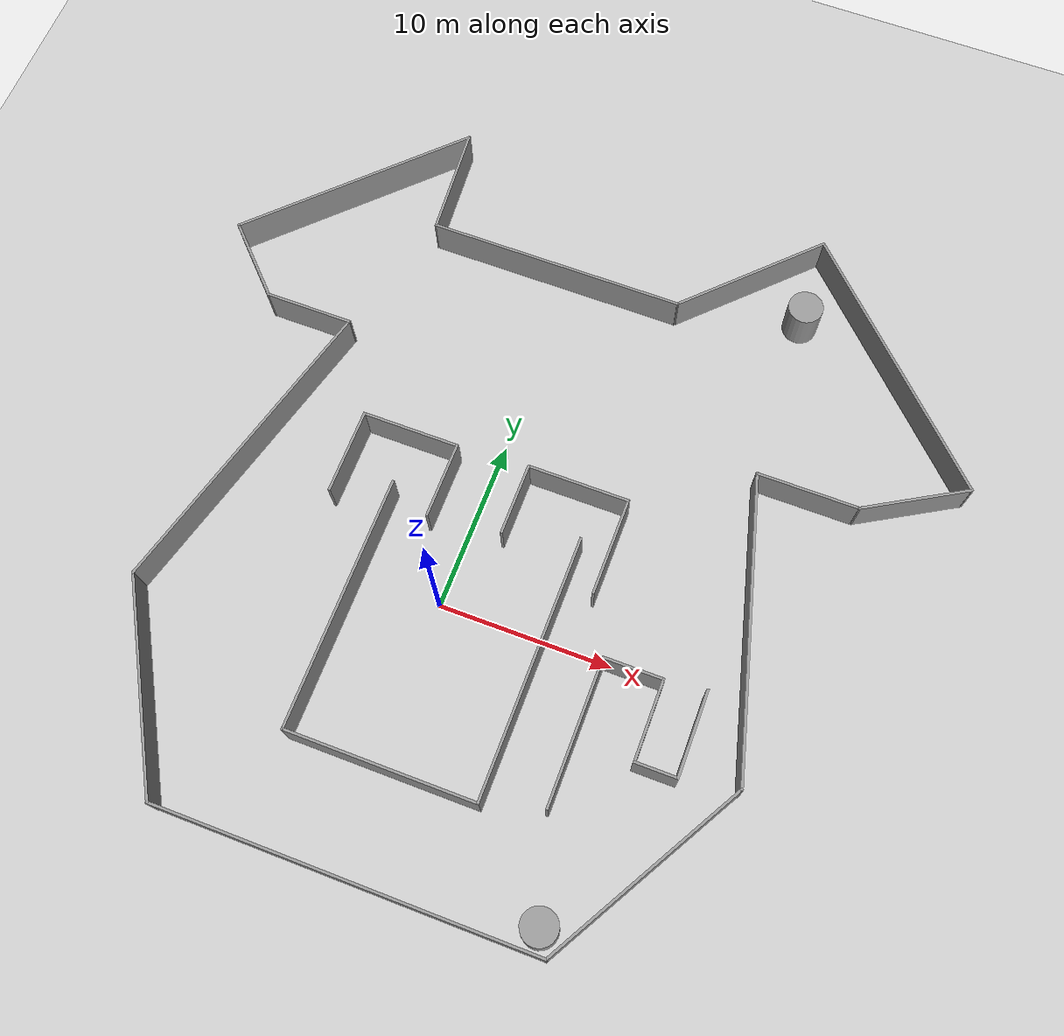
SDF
<sdf version="1.6">
 <world name="default">
  <light name="sun" type="directional">
   <pose>0 0 10 0 -0 0</pose>
   <diffuse>0.8 0.8 0.8 1</diffuse>
   <specular>0.2 0.2 0.2 1</specular>
   <attenuation>
    <range>1000</range>
    <constant>0.9</constant>
    <linear>0.01</linear>
    <quadratic>0.001</quadratic>
   </attenuation>
   <direction>-0.5 0.1 -0.9</direction>
  </light>
  <model name="ground_plane">
   <static>1</static>
   <link name="link">
    <collision name="collision">
     <geometry><plane><normal>0 0 1</normal><size>100 100</size></plane></geometry>
     <surface>
      <contact><collide_bitmask>65535</collide_bitmask></contact>
      <friction><ode><mu>100</mu><mu2>50</mu2></ode></friction>
     </surface>
    </collision>
    <visual name="visual">
     <cast_shadows>0</cast_shadows>
     <geometry><plane><normal>0 0 1</normal><size>100 100</size></plane></geometry>
     <material>
      <script><uri>file://media/materials/scripts/gazebo.material</uri><name>Gazebo/Grey</name></script>
     </material>
    </visual>
   </link>
  </model>
  <gravity>0 0 -9.8</gravity>
  <magnetic_field>6e-06 2.3e-05 -4.2e-05</magnetic_field>
  <atmosphere type="adiabatic"/>
  <physics name="default_physics" default="0" type="ode">
   <max_step_size>0.001</max_step_size>
   <real_time_factor>1</real_time_factor>
   <real_time_update_rate>1000</real_time_update_rate>
  </physics>
  <scene><ambient>0.4 0.4 0.4 1</ambient><background>0.7 0.7 0.7 1</background><shadows>1</shadows></scene>
  <audio><device>default</device></audio>
  <spherical_coordinates>
   <surface_model>EARTH_WGS84</surface_model>
   <latitude_deg>0</latitude_deg>
   <longitude_deg>0</longitude_deg>
   <elevation>0</elevation>
   <heading_deg>0</heading_deg>
  </spherical_coordinates>
  <model name="bigscene">
   <pose>2.86217 6.24914 0 0 -0 0</pose>
   <link name="Wall_0">
    <collision name="Wall_0_Collision">
     <geometry><box><size>15.25 0.15 2.5</size></box></geometry>
     <pose>0 0 1.25 0 -0 0</pose>
    </collision>
    <visual name="Wall_0_Visual">
     <pose>0 0 1.25 0 -0 0</pose>
     <geometry><box><size>15.25 0.15 2.5</size></box></geometry>
     <material>
      <script><uri>file://media/materials/scripts/gazebo.material</uri><name>Gazebo/Grey</name></script>
      <ambient>1 1 1 1</ambient>
     </material>
     <meta><layer>0</layer></meta>
    </visual>
    <pose>-3.95427 14.7868 0 0 -0 0</pose>
   </link>
   <link name="Wall_1">
    <collision name="Wall_1_Collision">
     <geometry><box><size>9.75 0.15 2.5</size></box></geometry>
     <pose>0 0 1.25 0 -0 0</pose>
    </collision>
    <visual name="Wall_1_Visual">
     <pose>0 0 1.25 0 -0 0</pose>
     <geometry><box><size>9.75 0.15 2.5</size></box></geometry>
     <material>
      <script><uri>file://media/materials/scripts/gazebo.material</uri><name>Gazebo/Grey</name></script>
      <ambient>1 1 1 1</ambient>
     </material>
     <meta><layer>0</layer></meta>
    </visual>
    <pose>6.98984 18.181 0 0 -0 0.785398</pose>
   </link>
   <link name="Wall_10">
    <collision name="Wall_10_Collision">
     <geometry><box><size>5.25 0.15 2.5</size></box></geometry>
     <pose>0 0 1.25 0 -0 0</pose>
    </collision>
    <visual name="Wall_10_Visual">
     <pose>0 0 1.25 0 -0 0</pose>
     <geometry><box><size>5.25 0.15 2.5</size></box></geometry>
     <material>
      <script><uri>file://media/materials/scripts/gazebo.material</uri><name>Gazebo/Grey</name></script>
      <ambient>1 1 1 1</ambient>
     </material>
     <meta><layer>0</layer></meta>
    </visual>
    <pose>-16.3192 7.08294 0 0 -0 3.14159</pose>
   </link>
   <link name="Wall_11">
    <collision name="Wall_11_Collision">
     <geometry><box><size>5.25 0.15 2.5</size></box></geometry>
     <pose>0 0 1.25 0 -0 0</pose>
    </collision>
    <visual name="Wall_11_Visual">
     <pose>0 0 1.25 0 -0 0</pose>
     <geometry><box><size>5.25 0.15 2.5</size></box></geometry>
     <material>
      <script><uri>file://media/materials/scripts/gazebo.material</uri><name>Gazebo/Grey</name></script>
      <ambient>1 1 1 1</ambient>
     </material>
     <meta><layer>0</layer></meta>
    </visual>
    <pose>-20.6724 8.88607 0 0 -0 2.35619</pose>
   </link>
   <link name="Wall_12">
    <collision name="Wall_12_Collision">
     <geometry><box><size>15 0.15 2.5</size></box></geometry>
     <pose>0 0 1.25 0 -0 0</pose>
    </collision>
    <visual name="Wall_12_Visual">
     <pose>0 0 1.25 0 -0 0</pose>
     <geometry><box><size>15 0.15 2.5</size></box></geometry>
     <material>
      <script><uri>file://media/materials/scripts/gazebo.material</uri><name>Gazebo/Grey</name></script>
      <ambient>1 1 1 1</ambient>
     </material>
     <meta><layer>0</layer></meta>
    </visual>
    <pose>-17.2252 15.9395 0 0 -0 0.785398</pose>
   </link>
   <link name="Wall_13">
    <collision name="Wall_13_Collision">
     <geometry><box><size>6.57015 0.15 2.5</size></box></geometry>
     <pose>0 0 1.25 0 -0 0</pose>
    </collision>
    <visual name="Wall_13_Visual">
     <pose>0 0 1.25 0 -0 0</pose>
     <geometry><box><size>6.57015 0.15 2.5</size></box></geometry>
     <material>
      <script><uri>file://media/materials/scripts/gazebo.material</uri><name>Gazebo/Grey</name></script>
      <ambient>1 1 1 1</ambient>
     </material>
     <meta><layer>0</layer></meta>
    </visual>
    <pose>-11.7396 17.9883 0 0 -0 -1.49742</pose>
   </link>
   <link name="Wall_15">
    <collision name="Wall_15_Collision">
     <geometry><box><size>5 0.15 2.5</size></box></geometry>
     <pose>0 0 1.25 0 -0 0</pose>
    </collision>
    <visual name="Wall_15_Visual">
     <pose>0 0 1.25 0 -0 0</pose>
     <geometry><box><size>5 0.15 2.5</size></box></geometry>
     <material>
      <script><uri>file://media/materials/scripts/gazebo.material</uri><name>Gazebo/Grey</name></script>
      <ambient>1 1 1 1</ambient>
     </material>
     <meta><layer>0</layer></meta>
    </visual>
    <pose>-10.638 -0.361295 0 0 -0 1.5708</pose>
   </link>
   <link name="Wall_16">
    <collision name="Wall_16_Collision">
     <geometry><box><size>5.75 0.15 2.5</size></box></geometry>
     <pose>0 0 1.25 0 -0 0</pose>
    </collision>
    <visual name="Wall_16_Visual">
     <pose>0 0 1.25 0 -0 0</pose>
     <geometry><box><size>5.75 0.15 2.5</size></box></geometry>
     <material>
      <script><uri>file://media/materials/scripts/gazebo.material</uri><name>Gazebo/Grey</name></script>
      <ambient>1 1 1 1</ambient>
     </material>
     <meta><layer>0</layer></meta>
    </visual>
    <pose>-7.83799 2.06371 0 0 -0 0</pose>
   </link>
   <link name="Wall_17">
    <collision name="Wall_17_Collision">
     <geometry><box><size>4.5 0.15 2.5</size></box></geometry>
     <pose>0 0 1.25 0 -0 0</pose>
    </collision>
    <visual name="Wall_17_Visual">
     <pose>0 0 1.25 0 -0 0</pose>
     <geometry><box><size>4.5 0.15 2.5</size></box></geometry>
     <material>
      <script><uri>file://media/materials/scripts/gazebo.material</uri><name>Gazebo/Grey</name></script>
      <ambient>1 1 1 1</ambient>
     </material>
     <meta><layer>0</layer></meta>
    </visual>
    <pose>-5.03799 -0.111295 0 0 -0 -1.5708</pose>
   </link>
   <link name="Wall_19">
    <collision name="Wall_19_Collision">
     <geometry><box><size>4.25 0.15 2.5</size></box></geometry>
     <pose>0 0 1.25 0 -0 0</pose>
    </collision>
    <visual name="Wall_19_Visual">
     <pose>0 0 1.25 0 -0 0</pose>
     <geometry><box><size>4.25 0.15 2.5</size></box></geometry>
     <material>
      <script><uri>file://media/materials/scripts/gazebo.material</uri><name>Gazebo/Grey</name></script>
      <ambient>1 1 1 1</ambient>
     </material>
     <meta><layer>0</layer></meta>
    </visual>
    <pose>-0.86138 0.253742 0 0 -0 1.5708</pose>
   </link>
   <link name="Wall_2">
    <collision name="Wall_2_Collision">
     <geometry><box><size>17.25 0.15 2.5</size></box></geometry>
     <pose>0 0 1.25 0 -0 0</pose>
    </collision>
    <visual name="Wall_2_Visual">
     <pose>0 0 1.25 0 -0 0</pose>
     <geometry><box><size>17.25 0.15 2.5</size></box></geometry>
     <material>
      <script><uri>file://media/materials/scripts/gazebo.material</uri><name>Gazebo/Grey</name></script>
      <ambient>1 1 1 1</ambient>
     </material>
     <meta><layer>0</layer></meta>
    </visual>
    <pose>16.4297 15.5293 0 0 -0 -0.785398</pose>
   </link>
   <link name="Wall_20">
    <collision name="Wall_20_Collision">
     <geometry><box><size>6 0.15 2.5</size></box></geometry>
     <pose>0 0 1.25 0 -0 0</pose>
    </collision>
    <visual name="Wall_20_Visual">
     <pose>0 0 1.25 0 -0 0</pose>
     <geometry><box><size>6 0.15 2.5</size></box></geometry>
     <material>
      <script><uri>file://media/materials/scripts/gazebo.material</uri><name>Gazebo/Grey</name></script>
      <ambient>1 1 1 1</ambient>
     </material>
     <meta><layer>0</layer></meta>
    </visual>
    <pose>2.06362 2.30374 0 0 -0 0</pose>
   </link>
   <link name="Wall_21">
    <collision name="Wall_21_Collision">
     <geometry><box><size>5.75 0.15 2.5</size></box></geometry>
     <pose>0 0 1.25 0 -0 0</pose>
    </collision>
    <visual name="Wall_21_Visual">
     <pose>0 0 1.25 0 -0 0</pose>
     <geometry><box><size>5.75 0.15 2.5</size></box></geometry>
     <material>
      <script><uri>file://media/materials/scripts/gazebo.material</uri><name>Gazebo/Grey</name></script>
      <ambient>1 1 1 1</ambient>
     </material>
     <meta><layer>0</layer></meta>
    </visual>
    <pose>4.98862 -0.496258 0 0 -0 -1.5708</pose>
   </link>
   <link name="Wall_23">
    <collision name="Wall_23_Collision">
     <geometry><box><size>14.75 0.15 2.5</size></box></geometry>
     <pose>0 0 1.25 0 -0 0</pose>
    </collision>
    <visual name="Wall_23_Visual">
     <pose>0 0 1.25 0 -0 0</pose>
     <geometry><box><size>14.75 0.15 2.5</size></box></geometry>
     <material>
      <script><uri>file://media/materials/scripts/gazebo.material</uri><name>Gazebo/Grey</name></script>
      <ambient>1 1 1 1</ambient>
     </material>
     <meta><layer>0</layer></meta>
    </visual>
    <pose>-7.54412 -8.47749 0 0 -0 -1.5708</pose>
   </link>
   <link name="Wall_24">
    <collision name="Wall_24_Collision">
     <geometry><box><size>11 0.15 2.5</size></box></geometry>
     <pose>0 0 1.25 0 -0 0</pose>
    </collision>
    <visual name="Wall_24_Visual">
     <pose>0 0 1.25 0 -0 0</pose>
     <geometry><box><size>11 0.15 2.5</size></box></geometry>
     <material>
      <script><uri>file://media/materials/scripts/gazebo.material</uri><name>Gazebo/Grey</name></script>
      <ambient>1 1 1 1</ambient>
     </material>
     <meta><layer>0</layer></meta>
    </visual>
    <pose>-2.11912 -15.7775 0 0 -0 0</pose>
   </link>
   <link name="Wall_25">
    <collision name="Wall_25_Collision">
     <geometry><box><size>15.25 0.15 2.5</size></box></geometry>
     <pose>0 0 1.25 0 -0 0</pose>
    </collision>
    <visual name="Wall_25_Visual">
     <pose>0 0 1.25 0 -0 0</pose>
     <geometry><box><size>15.25 0.15 2.5</size></box></geometry>
     <material>
      <script><uri>file://media/materials/scripts/gazebo.material</uri><name>Gazebo/Grey</name></script>
      <ambient>1 1 1 1</ambient>
     </material>
     <meta><layer>0</layer></meta>
    </visual>
    <pose>3.30587 -8.22749 0 0 -0 1.5708</pose>
   </link>
   <link name="Wall_27">
    <collision name="Wall_27_Collision">
     <geometry><box><size>8.5 0.15 2.5</size></box></geometry>
     <pose>0 0 1.25 0 -0 0</pose>
    </collision>
    <visual name="Wall_27_Visual">
     <pose>0 0 1.25 0 -0 0</pose>
     <geometry><box><size>8.5 0.15 2.5</size></box></geometry>
     <material>
      <script><uri>file://media/materials/scripts/gazebo.material</uri><name>Gazebo/Grey</name></script>
      <ambient>1 1 1 1</ambient>
     </material>
     <meta><layer>0</layer></meta>
    </visual>
    <pose>6.68765 -10.6155 0 0 -0 1.5708</pose>
   </link>
   <link name="Wall_28">
    <collision name="Wall_28_Collision">
     <geometry><box><size>3.5 0.15 2.5</size></box></geometry>
     <pose>0 0 1.25 0 -0 0</pose>
    </collision>
    <visual name="Wall_28_Visual">
     <pose>0 0 1.25 0 -0 0</pose>
     <geometry><box><size>3.5 0.15 2.5</size></box></geometry>
     <material>
      <script><uri>file://media/materials/scripts/gazebo.material</uri><name>Gazebo/Grey</name></script>
      <ambient>1 1 1 1</ambient>
     </material>
     <meta><layer>0</layer></meta>
    </visual>
    <pose>8.36265 -6.44048 0 0 -0 0</pose>
   </link>
   <link name="Wall_29">
    <collision name="Wall_29_Collision">
     <geometry><box><size>4.75 0.15 2.5</size></box></geometry>
     <pose>0 0 1.25 0 -0 0</pose>
    </collision>
    <visual name="Wall_29_Visual">
     <pose>0 0 1.25 0 -0 0</pose>
     <geometry><box><size>4.75 0.15 2.5</size></box></geometry>
     <material>
      <script><uri>file://media/materials/scripts/gazebo.material</uri><name>Gazebo/Grey</name></script>
      <ambient>1 1 1 1</ambient>
     </material>
     <meta><layer>0</layer></meta>
    </visual>
    <pose>10.0376 -8.74048 0 0 -0 -1.5708</pose>
   </link>
   <link name="Wall_3">
    <collision name="Wall_3_Collision">
     <geometry><box><size>6.5 0.15 2.5</size></box></geometry>
     <pose>0 0 1.25 0 -0 0</pose>
    </collision>
    <visual name="Wall_3_Visual">
     <pose>0 0 1.25 0 -0 0</pose>
     <geometry><box><size>6.5 0.15 2.5</size></box></geometry>
     <material>
      <script><uri>file://media/materials/scripts/gazebo.material</uri><name>Gazebo/Grey</name></script>
      <ambient>1 1 1 1</ambient>
     </material>
     <meta><layer>0</layer></meta>
    </visual>
    <pose>19.7259 7.89605 0 0 -0 -2.61799</pose>
   </link>
   <link name="Wall_30">
    <collision name="Wall_30_Collision">
     <geometry><box><size>2.5 0.15 2.5</size></box></geometry>
     <pose>0 0 1.25 0 -0 0</pose>
    </collision>
    <visual name="Wall_30_Visual">
     <pose>0 0 1.25 0 -0 0</pose>
     <geometry><box><size>2.5 0.15 2.5</size></box></geometry>
     <material>
      <script><uri>file://media/materials/scripts/gazebo.material</uri><name>Gazebo/Grey</name></script>
      <ambient>1 1 1 1</ambient>
     </material>
     <meta><layer>0</layer></meta>
    </visual>
    <pose>11.2126 -11.0405 0 0 -0 0</pose>
   </link>
   <link name="Wall_31">
    <collision name="Wall_31_Collision">
     <geometry><box><size>5 0.15 2.5</size></box></geometry>
     <pose>0 0 1.25 0 -0 0</pose>
    </collision>
    <visual name="Wall_31_Visual">
     <pose>0 0 1.25 0 -0 0</pose>
     <geometry><box><size>5 0.15 2.5</size></box></geometry>
     <material>
      <script><uri>file://media/materials/scripts/gazebo.material</uri><name>Gazebo/Grey</name></script>
      <ambient>1 1 1 1</ambient>
     </material>
     <meta><layer>0</layer></meta>
    </visual>
    <pose>12.3876 -8.61548 0 0 -0 1.5708</pose>
   </link>
   <link name="Wall_4">
    <collision name="Wall_4_Collision">
     <geometry><box><size>6 0.15 2.5</size></box></geometry>
     <pose>0 0 1.25 0 -0 0</pose>
    </collision>
    <visual name="Wall_4_Visual">
     <pose>0 0 1.25 0 -0 0</pose>
     <geometry><box><size>6 0.15 2.5</size></box></geometry>
     <material>
      <script><uri>file://media/materials/scripts/gazebo.material</uri><name>Gazebo/Grey</name></script>
      <ambient>1 1 1 1</ambient>
     </material>
     <meta><layer>0</layer></meta>
    </visual>
    <pose>14.0512 6.30855 0 0 -0 3.14159</pose>
   </link>
   <link name="Wall_5">
    <collision name="Wall_5_Collision">
     <geometry><box><size>17.5 0.15 2.5</size></box></geometry>
     <pose>0 0 1.25 0 -0 0</pose>
    </collision>
    <visual name="Wall_5_Visual">
     <pose>0 0 1.25 0 -0 0</pose>
     <geometry><box><size>17.5 0.15 2.5</size></box></geometry>
     <material>
      <script><uri>file://media/materials/scripts/gazebo.material</uri><name>Gazebo/Grey</name></script>
      <ambient>1 1 1 1</ambient>
     </material>
     <meta><layer>0</layer></meta>
    </visual>
    <pose>13.3715 -2.07086 0 0 -0 -1.309</pose>
   </link>
   <link name="Wall_6">
    <collision name="Wall_6_Collision">
     <geometry><box><size>13 0.15 2.5</size></box></geometry>
     <pose>0 0 1.25 0 -0 0</pose>
    </collision>
    <visual name="Wall_6_Visual">
     <pose>0 0 1.25 0 -0 0</pose>
     <geometry><box><size>13 0.15 2.5</size></box></geometry>
     <material>
      <script><uri>file://media/materials/scripts/gazebo.material</uri><name>Gazebo/Grey</name></script>
      <ambient>1 1 1 1</ambient>
     </material>
     <meta><layer>0</layer></meta>
    </visual>
    <pose>12.4042 -16.0145 0 0 -0 -2.0944</pose>
   </link>
   <link name="Wall_7">
    <collision name="Wall_7_Collision">
     <geometry><box><size>21.75 0.15 2.5</size></box></geometry>
     <pose>0 0 1.25 0 -0 0</pose>
    </collision>
    <visual name="Wall_7_Visual">
     <pose>0 0 1.25 0 -0 0</pose>
     <geometry><box><size>21.75 0.15 2.5</size></box></geometry>
     <material>
      <script><uri>file://media/materials/scripts/gazebo.material</uri><name>Gazebo/Grey</name></script>
      <ambient>1 1 1 1</ambient>
     </material>
     <meta><layer>0</layer></meta>
    </visual>
    <pose>-1.60827 -21.5787 0 0 -0 3.14159</pose>
   </link>
   <link name="Wall_8">
    <collision name="Wall_8_Collision">
     <geometry><box><size>12.5 0.15 2.5</size></box></geometry>
     <pose>0 0 1.25 0 -0 0</pose>
    </collision>
    <visual name="Wall_8_Visual">
     <pose>0 0 1.25 0 -0 0</pose>
     <geometry><box><size>12.5 0.15 2.5</size></box></geometry>
     <material>
      <script><uri>file://media/materials/scripts/gazebo.material</uri><name>Gazebo/Grey</name></script>
      <ambient>1 1 1 1</ambient>
     </material>
     <meta><layer>0</layer></meta>
    </visual>
    <pose>-15.4958 -16.231 0 0 -0 2.0944</pose>
   </link>
   <link name="Wall_9">
    <collision name="Wall_9_Collision">
     <geometry><box><size>18.75 0.15 2.5</size></box></geometry>
     <pose>0 0 1.25 0 -0 0</pose>
    </collision>
    <visual name="Wall_9_Visual">
     <pose>0 0 1.25 0 -0 0</pose>
     <geometry><box><size>18.75 0.15 2.5</size></box></geometry>
     <material>
      <script><uri>file://media/materials/scripts/gazebo.material</uri><name>Gazebo/Grey</name></script>
      <ambient>1 1 1 1</ambient>
     </material>
     <meta><layer>0</layer></meta>
    </visual>
    <pose>-16.1763 -1.90017 0 0 -0 1.309</pose>
   </link>
   <static>1</static>
  </model>
  <model name="unit_cylinder">
   <pose>11.2075 -14.0373 1.28773 0 -0 3e-06</pose>
   <link name="link">
    <inertial>
     <mass>1</mass>
     <inertia><ixx>0.145833</ixx><ixy>0</ixy><ixz>0</ixz><iyy>0.145833</iyy><iyz>0</iyz><izz>0.125</izz></inertia>
    </inertial>
    <collision name="collision">
     <geometry><cylinder><radius>1.01492</radius><length>2.57545</length></cylinder></geometry>
    </collision>
    <visual name="visual">
     <geometry><cylinder><radius>1.01492</radius><length>2.57545</length></cylinder></geometry>
     <material>
      <script><name>Gazebo/Grey</name><uri>file://media/materials/scripts/gazebo.material</uri></script>
     </material>
    </visual>
   </link>
  </model>
  <model name="unit_cylinder_clone">
   <pose>13.4948 23.3729 1.28772 0 -0 3e-06</pose>
   <link name="link">
    <inertial>
     <mass>1</mass>
     <inertia><ixx>0.145833</ixx><ixy>0</ixy><ixz>0</ixz><iyy>0.145833</iyy><iyz>0</iyz><izz>0.125</izz></inertia>
    </inertial>
    <collision name="collision">
     <geometry><cylinder><radius>1.01492</radius><length>2.57545</length></cylinder></geometry>
    </collision>
    <visual name="visual">
     <geometry><cylinder><radius>1.01492</radius><length>2.57545</length></cylinder></geometry>
     <material>
      <script><name>Gazebo/Grey</name><uri>file://media/materials/scripts/gazebo.material</uri></script>
     </material>
    </visual>
   </link>
  </model>
 </world>
</sdf>
